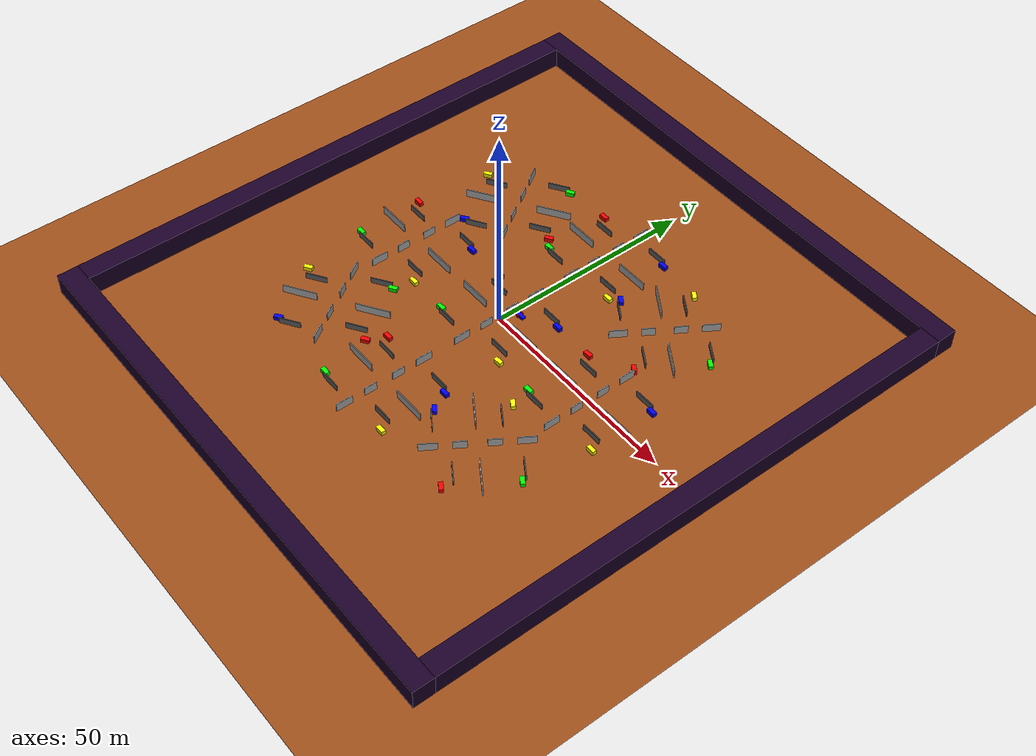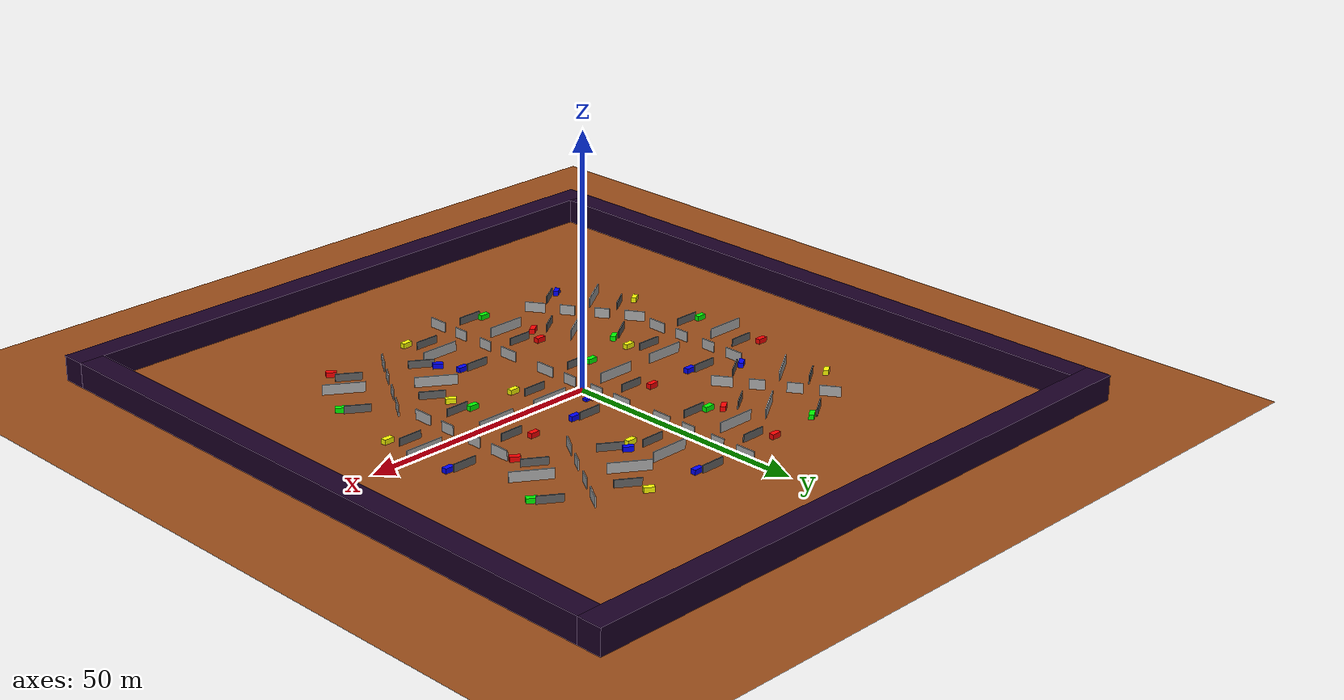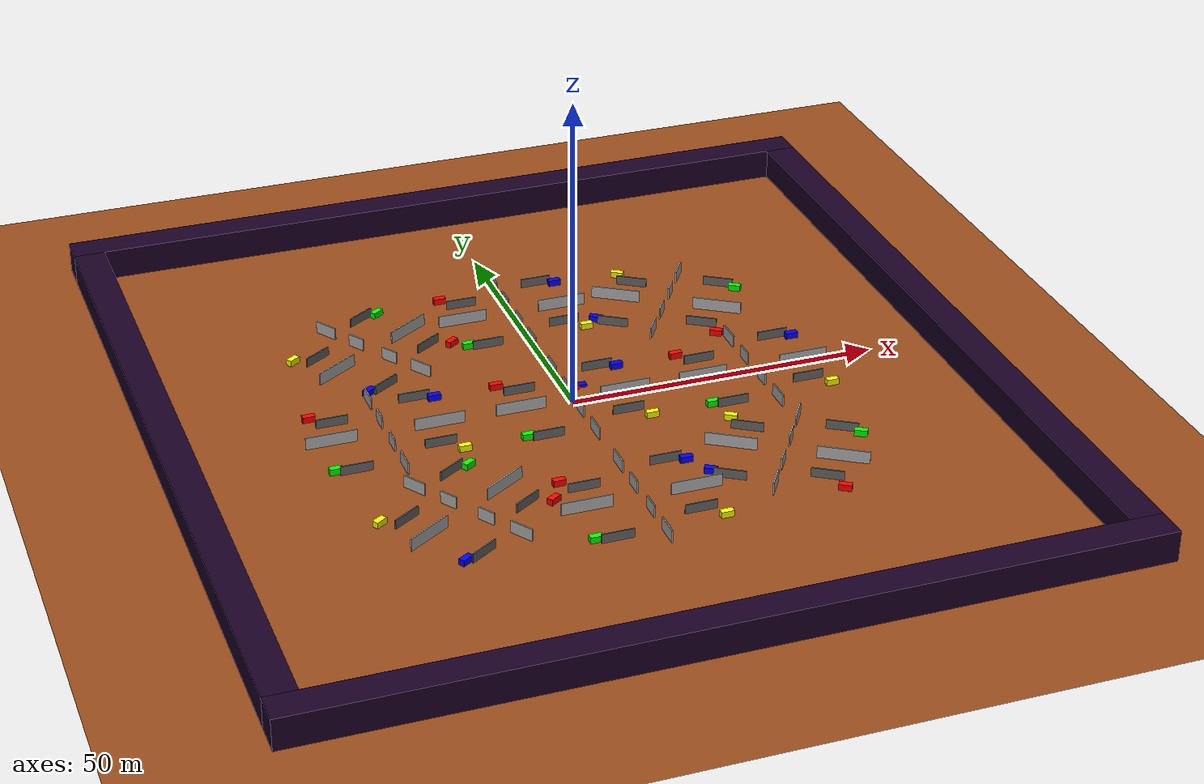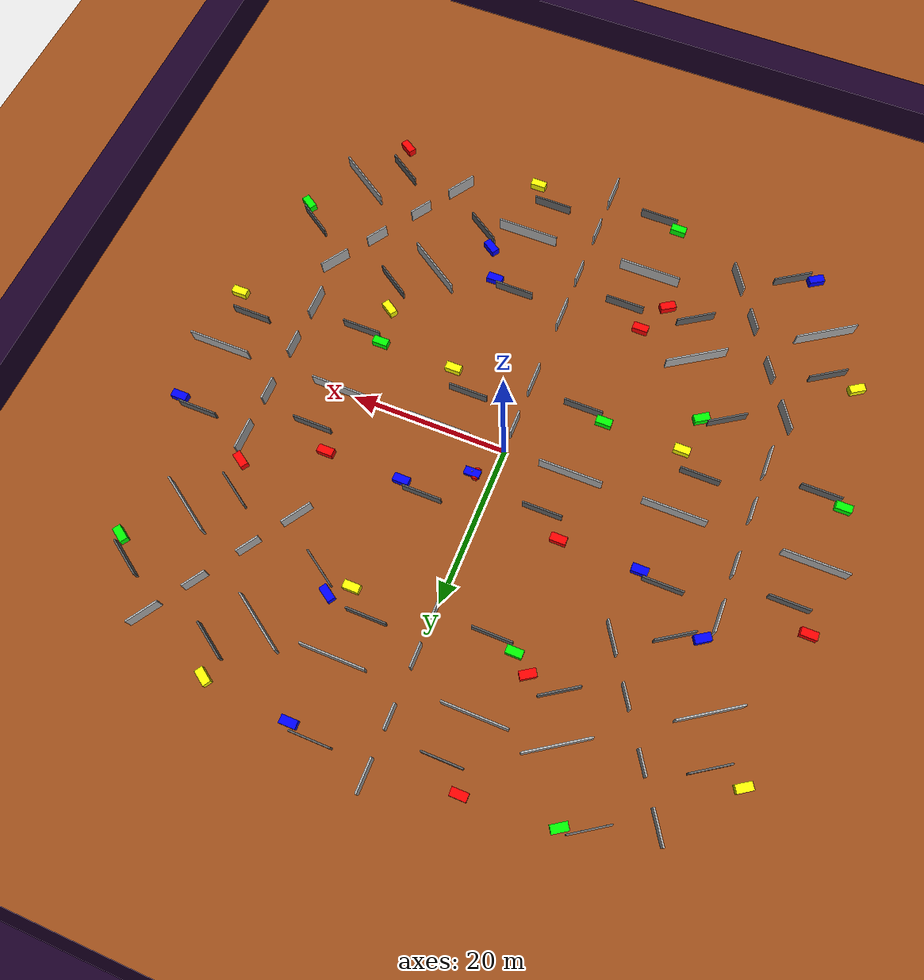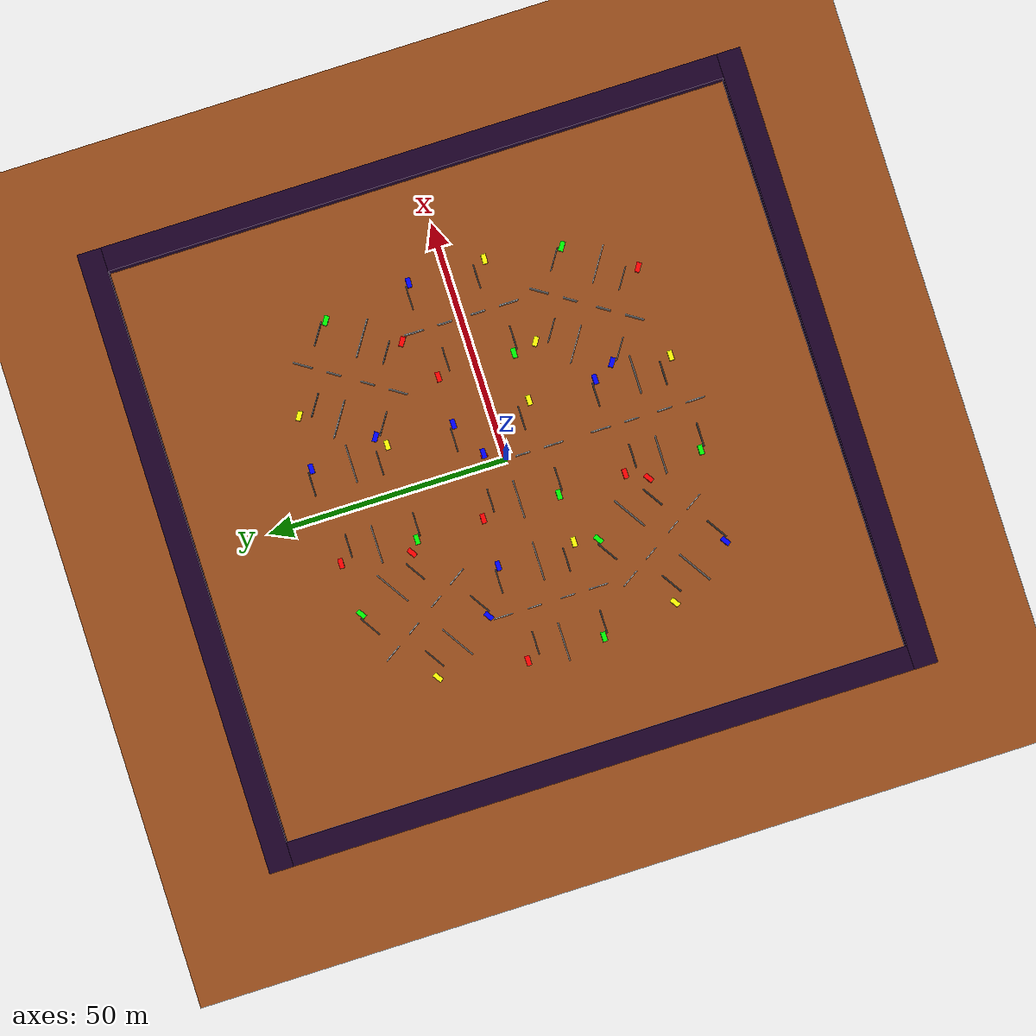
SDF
<?xml version="1.0"?>
<sdf version="1.10">
    <world name="default">
        <!-- Plugins needed for the simulation                     -->
        <!-- Gazebo uses system plugins to enable core features   -->

        <!-- Physics engine: enables dynamics simulation
     (gravity, collisions, wheel motion, forces) -->
        <plugin filename="gz-sim-physics-system"
            name="gz::sim::systems::Physics" />

        <!-- User commands: allows external commands such as
     spawning or deleting entities from ROS or CLI -->
        <plugin filename="gz-sim-user-commands-system"
            name="gz::sim::systems::UserCommands" />

        <!-- Scene broadcaster: sends simulation updates to
     the GUI so objects move correctly in the viewer -->
        <plugin filename="gz-sim-scene-broadcaster-system"
            name="gz::sim::systems::SceneBroadcaster" />

        <!-- Sensors system: enables simulated sensors such as
     LiDAR, cameras, IMU, etc. Without this plugin
     sensors exist but do not produce data -->
        <plugin filename="gz-sim-sensors-system"
            name="gz::sim::systems::Sensors">
            <!-- Rendering engine used by sensors.
       "ogre2" is standard but WSL2 often works better with "ogre". -->
            <render_engine>ogre</render_engine>
        </plugin>

        <!-- Sun -->
        <include>
            <uri>https://fuel.gazebosim.org/1.0/OpenRobotics/models/Sun</uri>
        </include>

        <model name="white_floor">
            <static>true</static>
            <pose>0 0 0 0 0 0</pose>

            <link name="floor_link">

                <collision name="collision">
                    <geometry>
                        <plane>
                            <normal>0 0 1</normal>
                            <size>150 150</size>
                        </plane>
                    </geometry>
                </collision>

                <visual name="visual">
                    <geometry>
                        <plane>
                            <normal>0 0 1</normal>
                            <size>150 150</size>
                        </plane>
                    </geometry>

                    <material>
                       <ambient>0.6 0.3 0.1 1</ambient>
                       <diffuse>0.6 0.3 0.1 1</diffuse>
                        <specular>0.1 0.1 0.1 1</specular>
                    </material>

                </visual>

            </link>
        </model>

        <include>
            <name>Wall</name>
            <uri>model://wall</uri>
            <pose>62.5 0 2.5 0 0 0</pose>
        </include>

        <include>
            <name>Wall2</name>
            <uri>model://wall</uri>
            <pose>0 67.5 2.5 0 0 -1.5708</pose>
        </include>

        <include>
            <name>Wall3</name>
            <uri>model://wall</uri>
            <pose>0 -67.5 2.5 0 0 1.5708</pose>
        </include>

        <include>
            <name>Wall4</name>
            <uri>model://wall</uri>
            <pose>-62.5 0 2.5 0 0 0</pose>
        </include>

        <include>
            <name>Obstacle World</name>
            <uri>model://obstacle_world</uri>
            <pose>0 0 0 0 0 0</pose>
        </include>
        <include>
            <name>Obstacle World2</name>
            <uri>model://obstacle_world</uri>
            <pose>30 0 0 0 0 0</pose>
        </include>

        <include>
            <name>Obstacle World3</name>
            <uri>model://obstacle_world</uri>
            <pose>0 30 0 0 0 0</pose>
        </include>

        <include>
            <name>Obstacle World4</name>
            <uri>model://obstacle_world</uri>
            <pose>0 -30 0 0 0 0</pose>
        </include>

        <include>
            <name>Obstacle World5</name>
            <uri>model://obstacle_world</uri>
            <pose>-30 0 0 0 0 0</pose>
        </include>

        <include>
            <name>Obstacle World6</name>
            <uri>model://obstacle_world</uri>
            <pose>-25 -25 0 0 0 10</pose>
        </include>

        <include>
            <name>Obstacle World7</name>
            <uri>model://obstacle_world</uri>
            <pose> 25 25 0 0 0 -10</pose>
        </include>

        <include>
            <name>Obstacle World8</name>
            <uri>model://obstacle_world</uri>
            <pose>-25 -25 0 0 0 10</pose>
        </include>

        <include>
            <name>Obstacle World9</name>
            <uri>model://obstacle_world</uri>
            <pose> 25 -25 0 0 0 -10</pose>
        </include>

        <include>
            <name>Obstacle World10</name>
            <uri>model://obstacle_world</uri>
            <pose> -25 25 0 0 0 10</pose>
        </include>

        <!-- X Y Z Roll Pitch Yaw -->
        <include>
            <name>Vehicle_blue</name>
            <uri>model://vehicle_blue</uri>
            <pose>2 4 0.05 0 0 0</pose> <!-- X Y Z Roll Pitch Yaw -->
        </include>

    </world>
</sdf>

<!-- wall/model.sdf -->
<sdf version="1.10">
    <model name='Wall'>
        <link name='box_link'>
            <inertial>
                <inertia>
                    <ixx>0.16666</ixx>
                    <ixy>0</ixy>
                    <ixz>0</ixz>
                    <iyy>0.16666</iyy>
                    <iyz>0</iyz>
                    <izz>0.16666</izz>
                </inertia>
                <mass>1</mass>
                <pose>0 0 0 0 0 0</pose>
            </inertial>
            <collision name='box_collision'>
                <geometry>
                    <box>
                        <size>5 150 5</size>
                    </box>
                </geometry>
                <surface>
                    <friction>
                        <ode />
                    </friction>
                    <bounce />
                    <contact />
                </surface>
            </collision>
            <visual name='box_visual'>
                <geometry>
                    <box>
                        <size>5 130 5</size>
                    </box>
                </geometry>
                <material>
                    <ambient>0.1 0.0 0.15 1</ambient>
                    <diffuse>0.1 0.0 0.15 1</diffuse>
                    <specular>1 1 1 1</specular>
                </material>
            </visual>
            <pose>0 0 0 0 0 0</pose>
            <enable_wind>false</enable_wind>
        </link>
        <static>false</static>
        <self_collide>false</self_collide>
    </model>
</sdf>

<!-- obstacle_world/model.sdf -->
<sdf version="1.10">

    <model name="obstacle_world">
    <!-- White floor -->

    <!-- OUTER WALLS -->

    <!-- INTERNAL WALLS -->

    <!-- Horizontal wall across the middle with one central opening -->
    <model name="mid_wall_left">
        <static>true</static>
        <pose>-8.5 0 1 0 0 0</pose>
        <link name="link">
            <collision name="collision">
                <geometry>
                    <box>
                        <size>8 0.2 2</size>
                    </box>
                </geometry>
            </collision>
            <visual name="visual">
                <geometry>
                    <box>
                        <size>8 0.2 2</size>
                    </box>
                </geometry>
                <material>
                    <ambient>0.7 0.7 0.7 1</ambient>
                    <diffuse>0.7 0.7 0.7 1</diffuse>
                </material>
            </visual>
        </link>
    </model>

    <model name="mid_wall_right">
        <static>true</static>
        <pose>8.5 0 1 0 0 0</pose>
        <link name="link">
            <collision name="collision">
                <geometry>
                    <box>
                        <size>8 0.2 2</size>
                    </box>
                </geometry>
            </collision>
            <visual name="visual">
                <geometry>
                    <box>
                        <size>8 0.2 2</size>
                    </box>
                </geometry>
                <material>
                    <ambient>0.7 0.7 0.7 1</ambient>
                    <diffuse>0.7 0.7 0.7 1</diffuse>
                </material>
            </visual>
        </link>
    </model>

    <!-- Vertical wall across the middle with offset openings -->
    <!-- top segment -->
    <model name="mid_vertical_top">
        <static>true</static>
        <pose>0 10 1 0 0 0</pose>
        <link name="link">
            <collision name="collision">
                <geometry>
                    <box>
                        <size>0.2 4 2</size>
                    </box>
                </geometry>
            </collision>
            <visual name="visual">
                <geometry>
                    <box>
                        <size>0.2 4 2</size>
                    </box>
                </geometry>
                <material>
                    <ambient>0.7 0.7 0.7 1</ambient>
                    <diffuse>0.7 0.7 0.7 1</diffuse>
                </material>
            </visual>
        </link>
    </model>

    <!-- upper-middle segment -->
    <model name="mid_vertical_upper">
        <static>true</static>
        <pose>0 3.5 1 0 0 0</pose>
        <link name="link">
            <collision name="collision">
                <geometry>
                    <box>
                        <size>0.2 3 2</size>
                    </box>
                </geometry>
            </collision>
            <visual name="visual">
                <geometry>
                    <box>
                        <size>0.2 3 2</size>
                    </box>
                </geometry>
                <material>
                    <ambient>0.7 0.7 0.7 1</ambient>
                    <diffuse>0.7 0.7 0.7 1</diffuse>
                </material>
            </visual>
        </link>
    </model>

    <!-- lower-middle segment -->
    <model name="mid_vertical_lower">
        <static>true</static>
        <pose>0 -3.5 1 0 0 0</pose>
        <link name="link">
            <collision name="collision">
                <geometry>
                    <box>
                        <size>0.2 3 2</size>
                    </box>
                </geometry>
            </collision>
            <visual name="visual">
                <geometry>
                    <box>
                        <size>0.2 3 2</size>
                    </box>
                </geometry>
                <material>
                    <ambient>0.7 0.7 0.7 1</ambient>
                    <diffuse>0.7 0.7 0.7 1</diffuse>
                </material>
            </visual>
        </link>
    </model>

    <!-- bottom segment -->
    <model name="mid_vertical_bottom">
        <static>true</static>
        <pose>0 -10 1 0 0 0</pose>
        <link name="link">
            <collision name="collision">
                <geometry>
                    <box>
                        <size>0.2 4 2</size>
                    </box>
                </geometry>
            </collision>
            <visual name="visual">
                <geometry>
                    <box>
                        <size>0.2 4 2</size>
                    </box>
                </geometry>
                <material>
                    <ambient>0.7 0.7 0.7 1</ambient>
                    <diffuse>0.7 0.7 0.7 1</diffuse>
                </material>
            </visual>
        </link>
    </model>

    <!-- LOCAL BLOCKERS / AISLE OBSTACLES -->

    <!-- Top-left quadrant blocker -->
    <model name="blocker_tl">
        <static>true</static>
        <pose>-7 5.5 0.75 0 0 0</pose>
        <link name="link">
            <collision name="collision">
                <geometry>
                    <box>
                        <size>5 0.2 1.5</size>
                    </box>
                </geometry>
            </collision>
            <visual name="visual">
                <geometry>
                    <box>
                        <size>5 0.2 1.5</size>
                    </box>
                </geometry>
                <material>
                    <ambient>0.4 0.4 0.4 1</ambient>
                    <diffuse>0.4 0.4 0.4 1</diffuse>
                </material>
            </visual>
        </link>
    </model>

    <!-- Top-right quadrant blocker -->
    <model name="blocker_tr">
        <static>true</static>
        <pose>7 8.8 0.75 0 0 0</pose>
        <link name="link">
            <collision name="collision">
                <geometry>
                    <box>
                        <size>5 0.2 1.5</size>
                    </box>
                </geometry>
            </collision>
            <visual name="visual">
                <geometry>
                    <box>
                        <size>5 0.2 1.5</size>
                    </box>
                </geometry>
                <material>
                    <ambient>0.4 0.4 0.4 1</ambient>
                    <diffuse>0.4 0.4 0.4 1</diffuse>
                </material>
            </visual>
        </link>
    </model>

    <!-- Bottom-left quadrant blocker -->
    <model name="blocker_bl">
        <static>true</static>
        <pose>-7 -8.8 0.75 0 0 0</pose>
        <link name="link">
            <collision name="collision">
                <geometry>
                    <box>
                        <size>5 0.2 1.5</size>
                    </box>
                </geometry>
            </collision>
            <visual name="visual">
                <geometry>
                    <box>
                        <size>5 0.2 1.5</size>
                    </box>
                </geometry>
                <material>
                    <ambient>0.4 0.4 0.4 1</ambient>
                    <diffuse>0.4 0.4 0.4 1</diffuse>
                </material>
            </visual>
        </link>
    </model>

    <!-- Bottom-right quadrant blocker -->
    <model name="blocker_br">
        <static>true</static>
        <pose>7 -5.5 0.75 0 0 0</pose>
        <link name="link">
            <collision name="collision">
                <geometry>
                    <box>
                        <size>5 0.2 1.5</size>
                    </box>
                </geometry>
            </collision>
            <visual name="visual">
                <geometry>
                    <box>
                        <size>5 0.2 1.5</size>
                    </box>
                </geometry>
                <material>
                    <ambient>0.4 0.4 0.4 1</ambient>
                    <diffuse>0.4 0.4 0.4 1</diffuse>
                </material>
            </visual>
        </link>
    </model>

    <!-- SHELVES / COLORED BOXES -->

    <model name="shelf_red">
        <static>true</static>
        <pose>-10 8 0.5 0 0 0</pose>
        <link name="link">
            <collision name="collision">
                <geometry>
                    <box>
                        <size>2 1 1</size>
                    </box>
                </geometry>
            </collision>
            <visual name="visual">
                <geometry>
                    <box>
                        <size>2 1 1</size>
                    </box>
                </geometry>
                <material>
                    <ambient>1 0 0 1</ambient>
                    <diffuse>1 0 0 1</diffuse>
                </material>
            </visual>
        </link>
    </model>

    <model name="shelf_blue">
        <static>true</static>
        <pose>10 8 0.5 0 0 0</pose>
        <link name="link">
            <collision name="collision">
                <geometry>
                    <box>
                        <size>2 1 1</size>
                    </box>
                </geometry>
            </collision>
            <visual name="visual">
                <geometry>
                    <box>
                        <size>2 1 1</size>
                    </box>
                </geometry>
                <material>
                    <ambient>0 0 1 1</ambient>
                    <diffuse>0 0 1 1</diffuse>
                </material>
            </visual>
        </link>
    </model>

    <model name="shelf_green">
        <static>true</static>
        <pose>-10 -8 0.5 0 0 0</pose>
        <link name="link">
            <collision name="collision">
                <geometry>
                    <box>
                        <size>2 1 1</size>
                    </box>
                </geometry>
            </collision>
            <visual name="visual">
                <geometry>
                    <box>
                        <size>2 1 1</size>
                    </box>
                </geometry>
                <material>
                    <ambient>0 1 0 1</ambient>
                    <diffuse>0 1 0 1</diffuse>
                </material>
            </visual>
        </link>
    </model>

    <model name="shelf_yellow">
        <static>true</static>
        <pose>10 -8 0.5 0 0 0</pose>
        <link name="link">
            <collision name="collision">
                <geometry>
                    <box>
                        <size>2 1 1</size>
                    </box>
                </geometry>
            </collision>
            <visual name="visual">
                <geometry>
                    <box>
                        <size>2 1 1</size>
                    </box>
                </geometry>
                <material>
                    <ambient>1 1 0 1</ambient>
                    <diffuse>1 1 0 1</diffuse>
                </material>
            </visual>
        </link>
    </model>
    </model>
</sdf>

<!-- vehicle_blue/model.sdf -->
<sdf version="1.10">
    <model name='vehicle_blue' canonical_link='Base_Link'>
        <plugin filename="gz-sim-joint-state-publisher-system"
            name="gz::sim::systems::JointStatePublisher">
            <topic>joint_states</topic>
            <joint_name>right_wheel_joint</joint_name> <!--motor
            direita-->
            <joint_name>left_wheel_joint</joint_name> <!--motor
            esquerda-->
        </plugin>
        <!-- https://gazebosim.org/api/sim/8/classgz_1_1sim_1_1systems_1_1PosePublisher.html -->
        <plugin filename="gz-sim-pose-publisher-system" name="gz::sim::systems::PosePublisher">
            <publish_model_pose>true</publish_model_pose>
            <!-- Disable everything else -->
            <publish_link_pose>false</publish_link_pose>
            <publish_visual_pose>false</publish_visual_pose>
            <publish_collision_pose>false</publish_collision_pose>
            <publish_sensor_pose>false</publish_sensor_pose>
            <publish_nested_model_pose>false</publish_nested_model_pose>
            <update_frequency>10</update_frequency>
        </plugin>
        <plugin
            filename="gz-sim-diff-drive-system"
            name="gz::sim::systems::DiffDrive">
            <left_joint>left_wheel_joint</left_joint>
            <right_joint>right_wheel_joint</right_joint>
            <wheel_separation>1.2</wheel_separation>
            <wheel_radius>0.4</wheel_radius>
            <odom_publish_frequency>20</odom_publish_frequency>
            <topic>cmd_vel</topic>
        </plugin>
        <plugin filename="gz-sim-imu-system"
            name="gz::sim::systems::Imu">
        </plugin>
        <!--Base_Link-->
        <link name='Base_Link'>

            <pose relative_to='__model__'>0.5 0 0.4 0 0 0</pose>
            <inertial> <!--inertial
            properties of the link mass, inertia matix-->
                <mass>1.14395</mass>
                <inertia>
                    <ixx>0.095329</ixx>
                    <ixy>0</ixy>
                    <ixz>0</ixz>
                    <iyy>0.381317</iyy>
                    <iyz>0</iyz>
                    <izz>0.476646</izz>
                </inertia>
            </inertial>
            <visual name='visual'>
                <geometry>
                    <box>
                        <size>2.0 1.0 0.5</size>
                    </box>
                </geometry>
                <!--Color
            of the link-->
                <material>
                    <ambient>0.0 0.0 1.0 1</ambient>
                    <diffuse>0.0 0.0 1.0 1</diffuse>
                    <specular>0.0 0.0 1.0 1</specular>
                </material>
            </visual>
            <collision name='collision'>
                <geometry>
                    <box>
                        <size>2.0 1.0 0.5</size>
                    </box>
                </geometry>
            </collision>
        </link>

        <!--Left
    wheel-->
        <link name='left_wheel'>
            <pose relative_to="Base_Link">-0.5 0.6 0 -1.5707 0 0</pose> <!--angles
        are in radian-->
            <inertial>
                <mass>1</mass>
                <inertia>
                    <ixx>0.043333</ixx>
                    <ixy>0</ixy>
                    <ixz>0</ixz>
                    <iyy>0.043333</iyy>
                    <iyz>0</iyz>
                    <izz>0.08</izz>
                </inertia>
            </inertial>
            <visual name='visual'>
                <geometry>
                    <cylinder>
                        <radius>0.4</radius>
                        <length>0.2</length>
                    </cylinder>
                </geometry>
                <material>
                    <ambient>1.0 0.0 0.0 1</ambient>
                    <diffuse>1.0 0.0 0.0 1</diffuse>
                    <specular>1.0 0.0 0.0 1</specular>
                </material>
            </visual>
            <collision name='collision'>
                <geometry>
                    <cylinder>
                        <radius>0.4</radius>
                        <length>0.2</length>
                    </cylinder>
                </geometry>
            </collision>
        </link>

        <!--The
    same as left wheel but with different position-->
        <link name='right_wheel'>
            <pose relative_to="Base_Link">-0.5 -0.6 0 -1.5707 0 0</pose> <!--angles
        are in radian-->
            <inertial>
                <mass>1</mass>
                <inertia>
                    <ixx>0.043333</ixx>
                    <ixy>0</ixy>
                    <ixz>0</ixz>
                    <iyy>0.043333</iyy>
                    <iyz>0</iyz>
                    <izz>0.08</izz>
                </inertia>
            </inertial>
            <visual name='visual'>
                <geometry>
                    <cylinder>
                        <radius>0.4</radius>
                        <length>0.2</length>
                    </cylinder>
                </geometry>
                <material>
                    <ambient>1.0 0.0 0.0 1</ambient>
                    <diffuse>1.0 0.0 0.0 1</diffuse>
                    <specular>1.0 0.0 0.0 1</specular>
                </material>
            </visual>
            <collision name='collision'>
                <geometry>
                    <cylinder>
                        <radius>0.4</radius>
                        <length>0.2</length>
                    </cylinder>
                </geometry>
            </collision>
        </link>

        <!--arbitrary
    frame-->
        <frame name="caster_frame" attached_to='Base_Link'>
            <pose>0.8 0 -0.2 0 0 0</pose>
        </frame>

        <!--caster
    wheel-->
        <link name='caster'>
            <pose relative_to='caster_frame' />
            <inertial>
                <mass>1</mass>
                <inertia>
                    <ixx>0.016</ixx>
                    <ixy>0</ixy>
                    <ixz>0</ixz>
                    <iyy>0.016</iyy>
                    <iyz>0</iyz>
                    <izz>0.016</izz>
                </inertia>
            </inertial>
            <visual name='visual'>
                <geometry>
                    <sphere>
                        <radius>0.2</radius>
                    </sphere>
                </geometry>
                <material>
                    <ambient>0.0 1 0.0 1</ambient>
                    <diffuse>0.0 1 0.0 1</diffuse>
                    <specular>0.0 1 0.0 1</specular>
                </material>
            </visual>
            <collision name='collision'>
                <geometry>
                    <sphere>
                        <radius>0.2</radius>
                    </sphere>
                </geometry>
            </collision>
        </link>

        <link name="IMU_MTI_680g_Link">
            <pose relative_to='Base_Link'>
                2 0 0 0 0 0
            </pose>
            <sensor name="imu_sensor" type="imu">
                <localization>ENU</localization>
                <gz_frame_id>IMU_MTI_680g_Link</gz_frame_id>
                <always_on>1</always_on>
                <update_rate>100</update_rate>
                <visualize>true</visualize>
                <topic>imu</topic>
               <imu>
                    <angular_velocity>
                        <x>
                            <noise type="gaussian">
                                <mean>0.0</mean>
                                <stddev>2e-3</stddev>
                            </noise>
                        </x>
                        <y>
                            <noise type="gaussian">
                                <mean>0.0</mean>
                                <stddev>2e-3</stddev>
                            </noise>
                        </y>
                        <z>
                            <noise type="gaussian">
                                <mean>0.0</mean>
                                <stddev>3e-3</stddev>
                            </noise>
                        </z>
                    </angular_velocity>
                    <linear_acceleration>
                        <x>
                            <noise type="gaussian">
                                <mean>0.0</mean>
                                <stddev>1.7e-2</stddev>
                            </noise>
                        </x>
                        <y>
                            <noise type="gaussian">
                                <mean>0.0</mean>
                                <stddev>1.7e-2</stddev>
                            </noise>
                        </y>
                        <z>
                            <noise type="gaussian">
                                <mean>0.0</mean>
                                <stddev>1.7e-2</stddev>
                            </noise>
                        </z>
                    </linear_acceleration>
                </imu>
            </sensor>
        </link>

        <link name="lidar_link">
            <pose relative_to='Base_Link'>
                0 0 0.5 0 0 0
            </pose>

            <inertial>
                <mass>0.1</mass>
                <inertia>
                    <ixx>0.000166667</ixx>
                    <iyy>0.000166667</iyy>
                    <izz>0.000166667</izz>
                </inertia>
            </inertial>
            <collision name="collision">
                <geometry>
                    <box>
                        <size>0.1 0.1 0.1</size>
                    </box>
                </geometry>
            </collision>
            <visual name="visual">
                <geometry>
                    <box>
                        <size>0.1 0.1 0.1</size>
                    </box>
                </geometry>
            </visual>
            <sensor name='gpu_lidar' type='gpu_lidar'>
                <pose relative_to='lidar_link'>
                    0 0 0 0 0 0
                </pose>
                <topic>scan</topic>
                <gz_frame_id>lidar_link</gz_frame_id>
                <update_rate>10</update_rate>
                <lidar>
                    <scan>
                        <horizontal>
                            <samples>640</samples>
                            <resolution>1</resolution>
                            <min_angle>-1.396263</min_angle>
                            <max_angle>1.396263</max_angle>
                        </horizontal>
                        <vertical>
                            <samples>1</samples>
                            <resolution>1</resolution>
                            <min_angle>0.0</min_angle>
                            <max_angle>0.0</max_angle>
                        </vertical>
                    </scan>
                    <range>
                        <min>0.08</min>
                        <max>10.0</max>
                        <resolution>0.01</resolution>
                    </range>
                </lidar>
                <visualize>true</visualize>
            </sensor>
        </link>

        <joint name='lidar_joint' type='fixed'>
            <parent>Base_Link</parent>
            <child>lidar_link</child>
        </joint>

        <joint name="imu_joint" type="fixed">
            <parent>Base_Link</parent>
            <child>IMU_MTI_680g_Link</child>
        </joint>

        <!--left
    wheel joint-->
        <joint name='left_wheel_joint' type='revolute'>
            <pose relative_to='left_wheel' />
            <parent>Base_Link</parent>
            <child>left_wheel</child>
            <axis>
                <xyz expressed_in='__model__'>0 1 0</xyz> <!--can
            be descired to any frame or even arbitrary frames-->
                <limit>
                    <lower>-1.79769e+308</lower>    <!--negative
                infinity-->
                    <upper>1.79769e+308</upper>     <!--positive
                infinity-->
                </limit>
            </axis>
        </joint>

        <!--right
    wheel joint-->
        <joint name='right_wheel_joint' type='revolute'>
            <pose relative_to='right_wheel' />
            <parent>Base_Link</parent>
            <child>right_wheel</child>
            <axis>
                <xyz expressed_in='__model__'>0 1 0</xyz>
                <limit>
                    <lower>-1.79769e+308</lower>    <!--negative
                infinity-->
                    <upper>1.79769e+308</upper>     <!--positive
                infinity-->
                </limit>
            </axis>
        </joint>

        <!--caster
    wheel joint--> <!--pose
    defult value is the child-->
        <joint name='caster_wheel' type='ball'>
            <parent>Base_Link</parent>
            <child>caster</child>
        </joint>
    </model>
</sdf>
